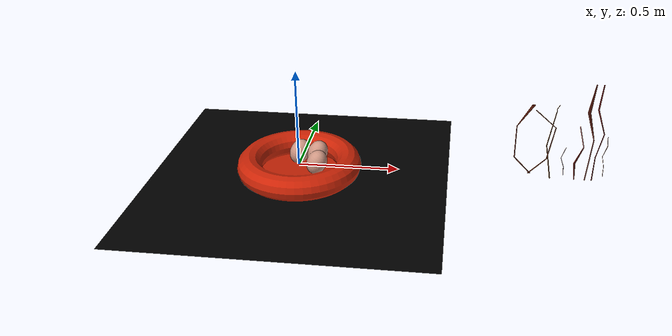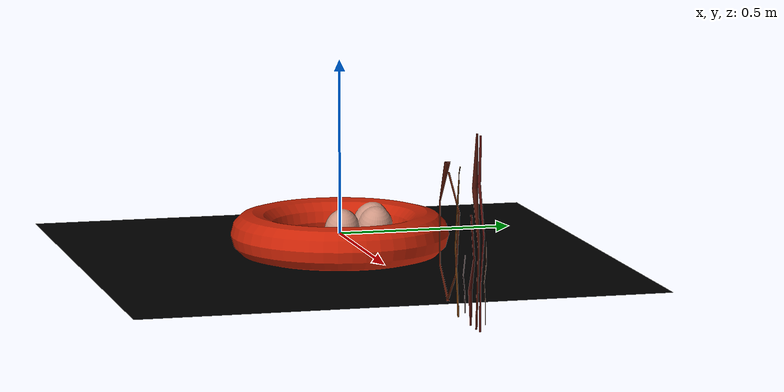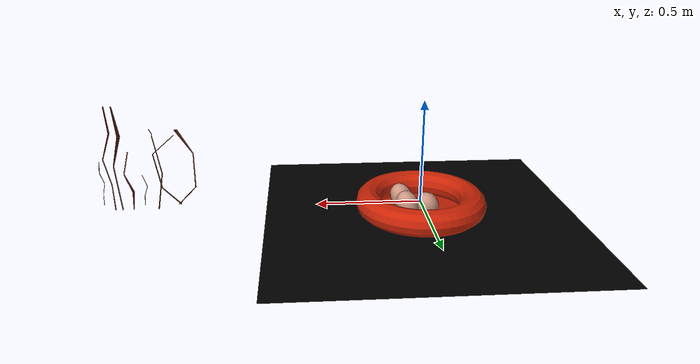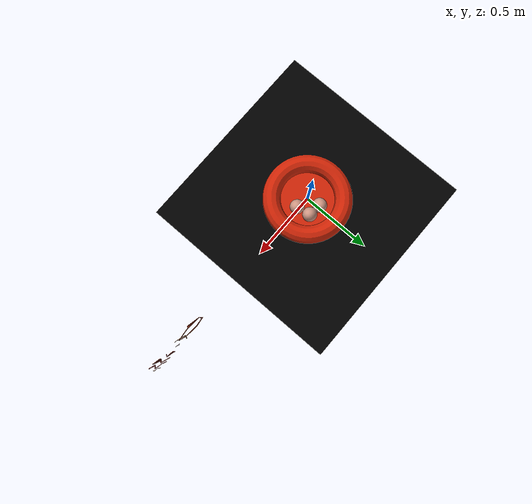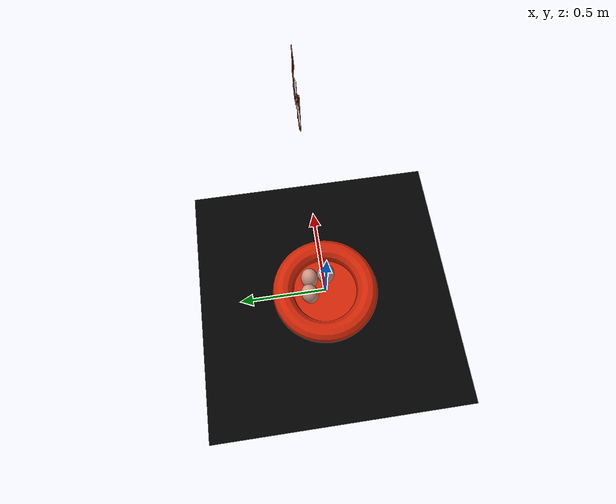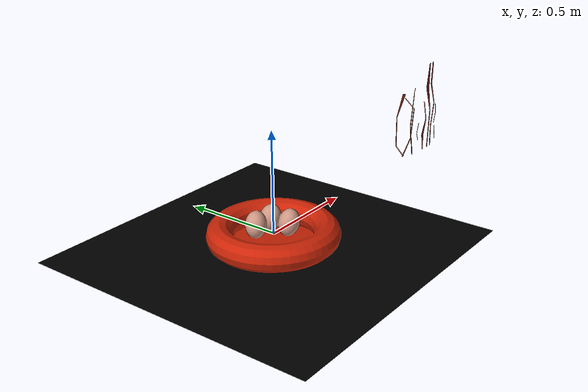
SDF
<?xml version="1.0" ?>
<sdf version="1.5">
  <model name="nest2">
    <static>true</static>
    <link name="link">
      <pose>0 0 0 0 0 0</pose>

      <visual name="visual">
        <cast_shadows>false</cast_shadows>
        <geometry>
          <mesh>
            <uri>model://nest2/meshes/nest.dae</uri>
            <scale> 0.25 0.25 0.25 </scale>
          </mesh>
        </geometry>
      </visual>

      <collision name="collision">
        <geometry>
          <mesh>
            <uri>model://nest2/meshes/nest.dae</uri>
          </mesh>
        </geometry>
      </collision>

    </link>
  </model>
</sdf>
